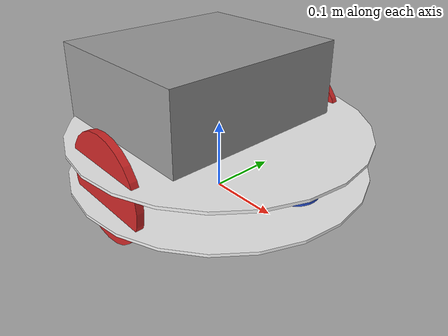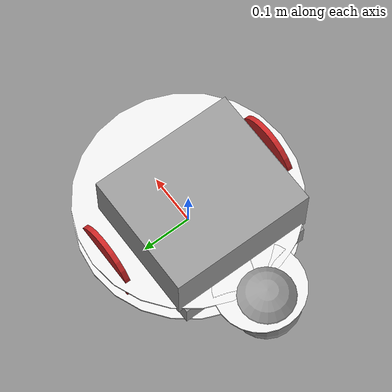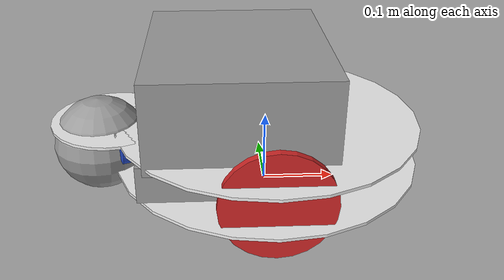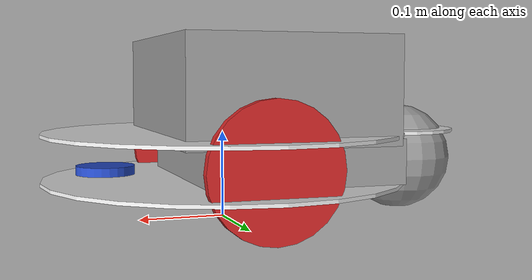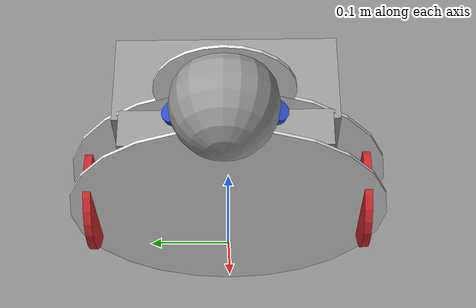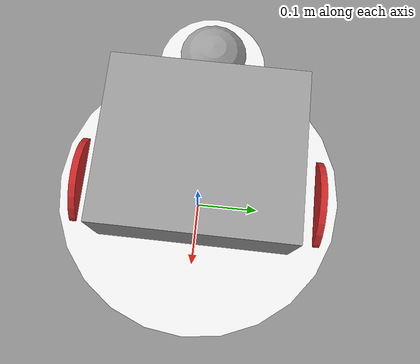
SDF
<?xml version='1.0'?>
<sdf version="1.4">
  <model name="EspressoFrameMove">
    <link name="body_link">
      <pose>0 0 0.072 0 0 0</pose>
      <inertial>
        <pose>-0.06 0 0 0 0 0</pose>
        <mass>4.0</mass>
        <inertia>
          <ixx>0.033</ixx>
          <ixy>0.0</ixy>
          <ixz>0.0</ixz>
          <iyy>0.033</iyy>
          <iyz>0.0</iyz>
          <izz>0.06</izz>
        </inertia>
      </inertial>
      <collision name="collision">
        <pose>-0.06 0 0 0 0 0</pose>
        <geometry>
          <box>
            <size>0.220 0.260 0.05</size>
          </box>
        </geometry>
      </collision>
      <visual name="visual">
        <pose>-0.06 0 0 0 0 0</pose>
        <geometry>
          <box>
            <size>0.220 0.260 0.05</size>
          </box>
        </geometry>
        <material>
          <script>
            <uri>file://media/materials/scripts/gazebo.material</uri>
            <name>Gazebo/Grey</name>
          </script>
        </material>
      </visual>

      <visual name="visual1">
        <pose>0 0 0.027 0 0 0</pose>
        <geometry>
          <cylinder>
            <radius>0.210</radius>
            <length>0.004</length>
          </cylinder>
        </geometry>
        <material>
          <script>
            <uri>file://media/materials/scripts/gazebo.material</uri>
            <name>Gazebo/White</name>
          </script>
        </material>
      </visual>
      <visual name="visual2">
        <pose>-0.210 0 0.027 0 0 0</pose>
        <geometry>
          <cylinder>
            <radius>0.085</radius>
            <length>0.004</length>
          </cylinder>
        </geometry>
        <material>
          <script>
            <uri>file://media/materials/scripts/gazebo.material</uri>
            <name>Gazebo/White</name>
          </script>
        </material>
      </visual>
      <visual name="visual3">
        <pose>0 0 -0.027 0 0 0</pose>
        <geometry>
          <cylinder>
            <radius>0.210</radius>
            <length>0.004</length>
          </cylinder>
        </geometry>
        <material>
          <script>
            <uri>file://media/materials/scripts/gazebo.material</uri>
            <name>Gazebo/White</name>
          </script>
        </material>
      </visual>

    </link>

    <joint name='left_wheel_joint' type='revolute'>
      <parent>body_link</parent>
      <child>left_wheel_link</child>
      <pose>0 0 0.072 0 0 0</pose>
      <axis>
        <use_parent_model_frame>true</use_parent_model_frame>
        <xyz>0 1 0</xyz>
      </axis>
    </joint>
    <link name="left_wheel_link">
      <pose>0 0.18 0.072 1.5707 0 0</pose>
      <inertial>
        <mass>0.1</mass>
        <inertia>
          <ixx>0.00013</ixx>
          <ixy>0.0</ixy>
          <ixz>0.0</ixz>
          <iyy>0.00013</iyy>
          <iyz>0.0</iyz>
          <izz>0.00026</izz>
        </inertia>
      </inertial>
      <collision name="collision">
        <geometry>
          <cylinder>
            <radius>0.072</radius>
            <length>0.01</length>
          </cylinder>
        </geometry>
        <surface>
          <contact>
            <ode>
              <kp>100000</kp>
              <kd>1</kd>
            </ode>
          </contact>
        </surface>
      </collision>
      <visual name="visual">
        <geometry>
          <cylinder>
            <radius>0.072</radius>
            <length>0.01</length>
          </cylinder>
        </geometry>
        <material>
          <script>
            <uri>file://media/materials/scripts/gazebo.material</uri>
            <name>Gazebo/Red</name>
          </script>
        </material>
      </visual>
    </link>

    <joint name='right_wheel_joint' type='revolute'>
      <parent>body_link</parent>
      <child>right_wheel_link</child>
      <pose>0 0 0.072 0 0 0</pose>
      <axis>
        <use_parent_model_frame>true</use_parent_model_frame>
        <xyz>0 1 0</xyz>
      </axis>
    </joint>
    <link name="right_wheel_link">
      <pose>0 -0.18 0.072 1.5707 0 0</pose>
      <inertial>
        <mass>0.1</mass>
        <inertia>
          <ixx>0.00013</ixx>
          <ixy>0.0</ixy>
          <ixz>0.0</ixz>
          <iyy>0.00013</iyy>
          <iyz>0.0</iyz>
          <izz>0.00026</izz>
        </inertia>
      </inertial>
      <collision name="collision">
        <geometry>
          <cylinder>
            <radius>0.072</radius>
            <length>0.01</length>
          </cylinder>
        </geometry>
        <surface>
          <contact>
            <ode>
              <kp>100000</kp>
              <kd>1</kd>
            </ode>
          </contact>
        </surface>
      </collision>
      <visual name="visual">
        <geometry>
          <cylinder>
            <radius>0.072</radius>
            <length>0.01</length>
          </cylinder>
        </geometry>
        <material>
          <script>
            <uri>file://media/materials/scripts/gazebo.material</uri>
            <name>Gazebo/Red</name>
          </script>
        </material>
      </visual>
    </link>

    <joint name='caster_joint' type='fixed'>
      <parent>body_link</parent>
      <child>caster_link</child>
      <pose>0 0 0 0 0 0</pose>
      <axis>
        <use_parent_model_frame>true</use_parent_model_frame>
        <xyz>0 1 0</xyz>
      </axis>
    </joint>
    <link name="caster_link">
      <pose>-0.23 0 0.065 0 0 0</pose>
      <inertial>
        <mass>0.1</mass>
        <inertia>
          <ixx>0.00017</ixx>
          <ixy>0.0</ixy>
          <ixz>0.0</ixz>
          <iyy>0.00017</iyy>
          <iyz>0.0</iyz>
          <izz>0.00017</izz>
        </inertia>
      </inertial>
      <collision name="collision">
        <geometry>
          <sphere>
            <radius>0.065</radius>
          </sphere>
        </geometry>
        <surface>
          <friction>
            <ode>
              <mu>0.01</mu>
              <mu2>0.01</mu2>
            </ode>
          </friction>
          <contact>
            <ode>
              <kp>50000</kp>
              <kd>1</kd>
            </ode>
          </contact>
        </surface>
      </collision>
      <visual name="visual">
        <geometry>
          <sphere>
            <radius>0.065</radius>
          </sphere>
        </geometry>
        <material>
          <script>
            <uri>file://media/materials/scripts/gazebo.material</uri>
            <name>Gazebo/Gray</name>
          </script>
        </material>
      </visual>
    </link>

    <joint name='front_sensor_joint' type='fixed'>
      <parent>body_link</parent>
      <child>front_laser_link</child>
      <pose>0 0 0 0 0 0</pose>
      <axis>
        <use_parent_model_frame>true</use_parent_model_frame>
        <xyz>0 1 0</xyz>
      </axis>
    </joint>
    <link name="front_laser_link">
      <pose>0.138 0 0.06 0 0 3.141592</pose>
      <inertial>
        <mass>0.1</mass>
        <inertia>
          <ixx>0.000015</ixx>
          <ixy>0.0</ixy>
          <ixz>0.0</ixz>
          <iyy>0.000015</iyy>
          <iyz>0.0</iyz>
          <izz>0.000015</izz>
        </inertia>
      </inertial>
      <collision name="collision">
        <geometry>
          <cylinder>
            <radius>0.033</radius>
            <length>0.01</length>
          </cylinder>
        </geometry>
      </collision>
      <visual name="visual">
        <geometry>
          <cylinder>
            <radius>0.033</radius>
            <length>0.01</length>
          </cylinder>
        </geometry>
        <material>
          <script>
            <uri>file://media/materials/scripts/gazebo.material</uri>
            <name>Gazebo/Blue</name>
          </script>
        </material>
      </visual>

      <sensor type="ray" name="front_laser">
        <pose>0 0 0 0 0 0</pose>
        <update_rate>10</update_rate>
        <ray>
          <scan>
            <horizontal>
              <samples>400</samples>
              <resolution>1</resolution>
              <min_angle>-3.1415</min_angle>
              <max_angle>3.1415</max_angle>
            </horizontal>
          </scan>
          <range>
            <min>0.1</min>
            <max>20.0</max>
            <resolution>0.01</resolution>
          </range>
          <noise>
            <type>gaussian</type>
            <mean>0.0</mean>
            <stddev>0.01</stddev>
          </noise>
        </ray>
        <plugin name="gazebo_lidar_plugin" filename="libgazebo_ros_ray_sensor.so">
          <ros>
            <argument>~/out:=/device/front_laser/scan</argument>
          </ros>
          <output_type>sensor_msgs/LaserScan</output_type>
        </plugin>
      </sensor>
    </link>

    <joint name='sonar_0_joint' type='fixed'>
      <parent>body_link</parent>
      <child>sonar_0_link</child>
    </joint>
    <link name="sonar_0_link">
      <pose>-0.19 0.06 0.08 0 0 2.8</pose>
      <inertial>
        <mass>0.1</mass>
        <inertia>
          <ixx>0.000015</ixx>
          <ixy>0.0</ixy>
          <ixz>0.0</ixz>
          <iyy>0.000015</iyy>
          <iyz>0.0</iyz>
          <izz>0.000015</izz>
        </inertia>
      </inertial>
      <visual name="visual">
        <pose>0 0 0 0 1.5707 0</pose>
        <geometry>
          <cylinder>
            <radius>0.015</radius>
            <length>0.01</length>
          </cylinder>
        </geometry>
        <material>
          <script>
            <uri>file://media/materials/scripts/gazebo.material</uri>
            <name>Gazebo/Blue</name>
          </script>
        </material>
      </visual>

      <sensor type="ray" name="TeraRanger">
        <pose>0 0 0 0 0 0</pose>
        <visualize>true</visualize>
        <update_rate>10</update_rate>
        <ray>
          <scan>
              <horizontal>
                <samples>3</samples>
                <resolution>1</resolution>
                <min_angle>-0.12</min_angle>
                <max_angle>0.12</max_angle>
              </horizontal>
              <vertical>
                <samples>3</samples>
                <resolution>1</resolution>
                <min_angle>-0.05</min_angle>
                <max_angle>0.05</max_angle>
              </vertical>
          </scan>
          <range>
              <min>0.20</min>
              <max>1</max>
              <resolution>0.01</resolution>
          </range>
        </ray>
      </sensor>
    </link>

    <joint name='sonar_1_joint' type='fixed'>
      <parent>body_link</parent>
      <child>sonar_1_link</child>
    </joint>
    <link name="sonar_1_link">
      <pose>-0.19 -0.06 0.08 0 0 -2.8</pose>
      <inertial>
        <mass>0.1</mass>
        <inertia>
          <ixx>0.000015</ixx>
          <ixy>0.0</ixy>
          <ixz>0.0</ixz>
          <iyy>0.000015</iyy>
          <iyz>0.0</iyz>
          <izz>0.000015</izz>
        </inertia>
      </inertial>
      <visual name="visual">
        <pose>0 0 0 0 1.5707 0</pose>
        <geometry>
          <cylinder>
            <radius>0.015</radius>
            <length>0.01</length>
          </cylinder>
        </geometry>
        <material>
          <script>
            <uri>file://media/materials/scripts/gazebo.material</uri>
            <name>Gazebo/Blue</name>
          </script>
        </material>
      </visual>

      <sensor type="ray" name="TeraRanger">
        <pose>0 0 0 0 0 0</pose>
        <visualize>true</visualize>
        <update_rate>10</update_rate>
        <ray>
          <scan>
              <horizontal>
                <samples>3</samples>
                <resolution>1</resolution>
                <min_angle>-0.12</min_angle>
                <max_angle>0.12</max_angle>
              </horizontal>
              <vertical>
                <samples>3</samples>
                <resolution>1</resolution>
                <min_angle>-0.05</min_angle>
                <max_angle>0.05</max_angle>
              </vertical>
          </scan>
          <range>
              <min>0.20</min>
              <max>1</max>
              <resolution>0.01</resolution>
          </range>
        </ray>
      </sensor>
    </link>

    <joint name='frame_joint' type='fixed'>
      <parent>body_link</parent>
      <child>frame_link</child>
    </joint>

    <link name="frame_link">
      <pose>0 0 0.150 0 0 0</pose>
      <inertial>
        <pose>-0.04 0 0 0 0 0</pose>
        <mass>1.0</mass>
        <inertia>
          <ixx>0.0077</ixx>
          <ixy>0.0</ixy>
          <ixz>0.0</ixz>
          <iyy>0.0059</iyy>
          <iyz>0.0</iyz>
          <izz>0.011</izz>
        </inertia>
      </inertial>

      <visual name="visual_base">
        <pose>-0.04 0 0 0 0 0</pose>
        <geometry>
          <box>
            <size>0.24 0.28 0.12</size>
          </box>
        </geometry>
        <material>
          <script>
            <uri>file://media/materials/scripts/gazebo.material</uri>
            <name>Gazebo/Grey</name>
          </script>
        </material>
      </visual>
    </link>

    <plugin name="mavros_move_plugin" filename="libmavros_move_plugin.so">
    </plugin>
  </model>
</sdf>
